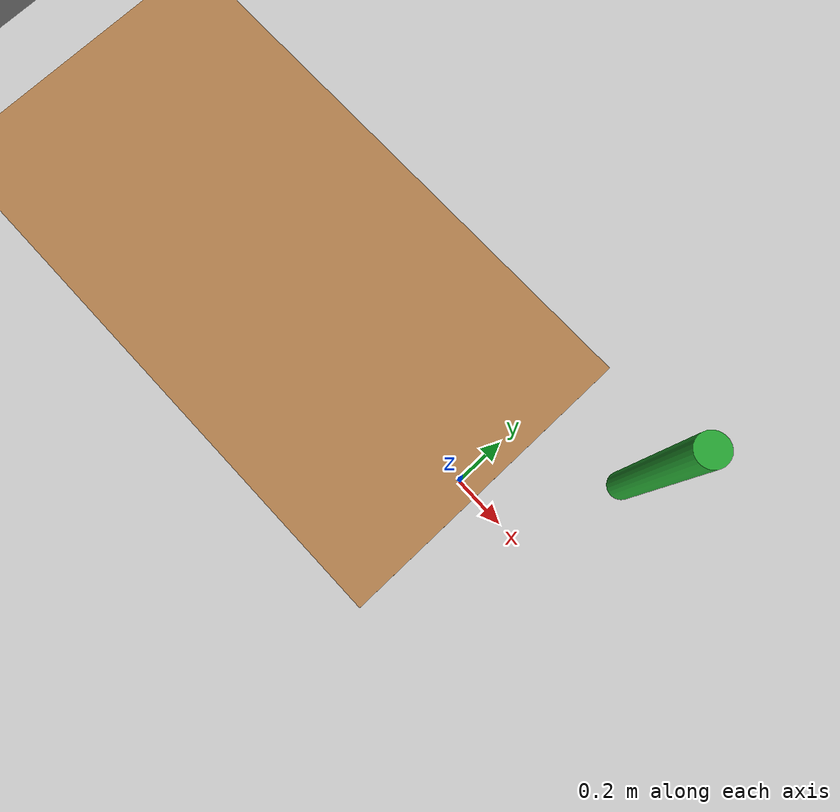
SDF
<sdf version="1.7">
 <world name="default">
  <light name="sun" type="directional">
   <pose>0 0 10 0 -0 0</pose>
   <diffuse>0.8 0.8 0.8 1</diffuse>
   <specular>0.2 0.2 0.2 1</specular>
   <attenuation>
    <range>1000</range>
    <constant>0.9</constant>
    <linear>0.01</linear>
    <quadratic>0.001</quadratic>
   </attenuation>
   <direction>-0.5 0.1 -0.9</direction>
   <spot><inner_angle>0</inner_angle><outer_angle>0</outer_angle><falloff>0</falloff></spot>
  </light>
  <model name="ground_plane">
   <static>1</static>
   <link name="link">
    <collision name="collision">
     <geometry><plane><normal>0 0 1</normal><size>100 100</size></plane></geometry>
     <surface>
      <contact><collide_bitmask>65535</collide_bitmask></contact>
      <friction><ode><mu>100</mu><mu2>50</mu2></ode></friction>
     </surface>
    </collision>
    <visual name="visual">
     <cast_shadows>0</cast_shadows>
     <geometry><plane><normal>0 0 1</normal><size>100 100</size></plane></geometry>
     <material>
      <script><uri>file://media/materials/scripts/gazebo.material</uri><name>Gazebo/Grey</name></script>
     </material>
    </visual>
   </link>
  </model>
  <gravity>0 0 -9.8</gravity>
  <magnetic_field>6e-06 2.3e-05 -4.2e-05</magnetic_field>
  <atmosphere type="adiabatic"/>
  <physics name="default_physics" default="0" type="ode">
   <max_step_size>0.001</max_step_size>
   <real_time_factor>1</real_time_factor>
   <real_time_update_rate>1000</real_time_update_rate>
  </physics>
  <scene><ambient>0.7 0.7 0.7 1</ambient><background>0.7 0.7 0.7 1</background><shadows>1</shadows></scene>
  <audio><device>default</device></audio>
  <spherical_coordinates>
   <surface_model>EARTH_WGS84</surface_model>
   <latitude_deg>0</latitude_deg>
   <longitude_deg>0</longitude_deg>
   <elevation>0</elevation>
   <heading_deg>0</heading_deg>
  </spherical_coordinates>
  <model name="unit_cylinder">
   <link name="link">
    <inertial>
     <mass>1</mass>
     <inertia><ixx>0.145833</ixx><ixy>0</ixy><ixz>0</ixz><iyy>0.145833</iyy><iyz>0</iyz><izz>0.125</izz></inertia>
    </inertial>
    <visual name="visual">
     <geometry><cylinder><radius>0.05</radius><length>0.1</length></cylinder></geometry>
     <material>
      <script><name>Gazebo/Green</name><uri>file://media/materials/scripts/gazebo.material</uri></script>
      <shader type="pixel"><normal_map>__default__</normal_map></shader>
      <ambient>0.3 0.3 0.3 1</ambient>
      <diffuse>0.7 0.7 0.7 1</diffuse>
      <specular>0.01 0.01 0.01 1</specular>
      <emissive>0 0 0 1</emissive>
     </material>
    </visual>
    <collision name="collision">
     <geometry><cylinder><radius>0.5</radius><length>1</length></cylinder></geometry>
     <surface>
      <friction>
       <ode><mu>1</mu><mu2>1</mu2><fdir1>0 0 0</fdir1><slip1>0</slip1><slip2>0</slip2></ode>
       <torsional>
        <coefficient>1</coefficient>
        <patch_radius>0</patch_radius>
        <surface_radius>0</surface_radius>
        <use_patch_radius>1</use_patch_radius>
        <ode><slip>0</slip></ode>
       </torsional>
      </friction>
      <bounce><restitution_coefficient>0</restitution_coefficient><threshold>1e+06</threshold></bounce>
      <contact>
       <collide_without_contact>0</collide_without_contact>
       <collide_without_contact_bitmask>1</collide_without_contact_bitmask>
       <collide_bitmask>1</collide_bitmask>
       <ode>
        <soft_cfm>0</soft_cfm>
        <soft_erp>0.2</soft_erp>
        <kp>1e+13</kp>
        <kd>1</kd>
        <max_vel>0.01</max_vel>
        <min_depth>0</min_depth>
       </ode>
       <bullet>
        <split_impulse>1</split_impulse>
        <split_impulse_penetration_threshold>-0.01</split_impulse_penetration_threshold>
        <soft_cfm>0</soft_cfm>
        <soft_erp>0.2</soft_erp>
        <kp>1e+13</kp>
        <kd>1</kd>
       </bullet>
      </contact>
     </surface>
    </collision>
   </link>
   <static>1</static>
   <pose>-83.7335 -327.346 0.5 -1.5708 0.873 1.31937</pose>
  </model>
  <plugin name="ros_link_attacher_plugin" filename="libgazebo_ros_link_attacher.so"/>
  <model name="cylinder_green">
   <link name="link">
    <inertial>
     <mass>1</mass>
     <inertia><ixx>0.145833</ixx><ixy>0</ixy><ixz>0</ixz><iyy>0.145833</iyy><iyz>0</iyz><izz>0.125</izz></inertia>
    </inertial>
    <pose>0.118376 0 0.163598 0 -0 0</pose>
    <visual name="visual">
     <geometry><cylinder><radius>0.05</radius><length>0.9</length></cylinder></geometry>
     <material>
      <script><name>Gazebo/Green</name><uri>file://media/materials/scripts/gazebo.material</uri></script>
      <shader type="pixel"><normal_map>__default__</normal_map></shader>
      <ambient>0 1 0 1</ambient>
      <diffuse>0.7 0.7 0.7 1</diffuse>
      <specular>0.01 0.01 0.01 1</specular>
      <emissive>0 0 0 1</emissive>
     </material>
    </visual>
    <collision name="collision">
     <geometry><cylinder><radius>0.05</radius><length>0.9</length></cylinder></geometry>
     <surface>
      <friction>
       <ode><mu>1</mu><mu2>1</mu2><fdir1>0 0 0</fdir1><slip1>0</slip1><slip2>0</slip2></ode>
       <torsional>
        <coefficient>1</coefficient>
        <patch_radius>0</patch_radius>
        <surface_radius>0</surface_radius>
        <use_patch_radius>1</use_patch_radius>
        <ode><slip>0</slip></ode>
       </torsional>
      </friction>
      <bounce><restitution_coefficient>0</restitution_coefficient><threshold>1e+06</threshold></bounce>
      <contact>
       <collide_without_contact>0</collide_without_contact>
       <collide_without_contact_bitmask>1</collide_without_contact_bitmask>
       <collide_bitmask>1</collide_bitmask>
       <ode>
        <soft_cfm>0</soft_cfm>
        <soft_erp>0.2</soft_erp>
        <kp>1e+13</kp>
        <kd>1</kd>
        <max_vel>0.01</max_vel>
        <min_depth>0</min_depth>
       </ode>
       <bullet>
        <split_impulse>1</split_impulse>
        <split_impulse_penetration_threshold>-0.01</split_impulse_penetration_threshold>
        <soft_cfm>0</soft_cfm>
        <soft_erp>0.2</soft_erp>
        <kp>1e+13</kp>
        <kd>1</kd>
       </bullet>
      </contact>
     </surface>
    </collision>
   </link>
   <static>1</static>
   <pose>0.277388 0.400017 0.286402 -0 1e-06 -0.000134</pose>
  </model>
  <model name="table">
   <static>1</static>
   <link name="link">
    <collision name="surface">
     <pose>0 0 1 0 -0 0</pose>
     <geometry><box><size>1.5 0.8 0.03</size></box></geometry>
     <surface><friction><ode><mu>0.6</mu><mu2>0.6</mu2></ode></friction></surface>
    </collision>
    <visual name="visual1">
     <pose>0 0 1 0 -0 0</pose>
     <geometry><box><size>1.5 0.8 0.03</size></box></geometry>
     <material>
      <script><uri>file://media/materials/scripts/gazebo.material</uri><name>Gazebo/Wood</name></script>
     </material>
    </visual>
    <collision name="front_left_leg">
     <pose>0.68 0.38 0.5 0 -0 0</pose>
     <geometry><cylinder><radius>0.02</radius><length>1</length></cylinder></geometry>
    </collision>
    <visual name="front_left_leg">
     <pose>0.68 0.38 0.5 0 -0 0</pose>
     <geometry><cylinder><radius>0.02</radius><length>1</length></cylinder></geometry>
     <material>
      <script><uri>file://media/materials/scripts/gazebo.material</uri><name>Gazebo/Grey</name></script>
     </material>
    </visual>
    <collision name="front_right_leg">
     <pose>0.68 -0.38 0.5 0 -0 0</pose>
     <geometry><cylinder><radius>0.02</radius><length>1</length></cylinder></geometry>
    </collision>
    <visual name="front_right_leg">
     <pose>0.68 -0.38 0.5 0 -0 0</pose>
     <geometry><cylinder><radius>0.02</radius><length>1</length></cylinder></geometry>
     <material>
      <script><uri>file://media/materials/scripts/gazebo.material</uri><name>Gazebo/Grey</name></script>
     </material>
    </visual>
    <collision name="back_right_leg">
     <pose>-0.68 -0.38 0.5 0 -0 0</pose>
     <geometry><cylinder><radius>0.02</radius><length>1</length></cylinder></geometry>
    </collision>
    <visual name="back_right_leg">
     <pose>-0.68 -0.38 0.5 0 -0 0</pose>
     <geometry><cylinder><radius>0.02</radius><length>1</length></cylinder></geometry>
     <material>
      <script><uri>file://media/materials/scripts/gazebo.material</uri><name>Gazebo/Grey</name></script>
     </material>
    </visual>
    <collision name="back_left_leg">
     <pose>-0.68 0.38 0.5 0 -0 0</pose>
     <geometry><cylinder><radius>0.02</radius><length>1</length></cylinder></geometry>
    </collision>
    <visual name="back_left_leg">
     <pose>-0.68 0.38 0.5 0 -0 0</pose>
     <geometry><cylinder><radius>0.02</radius><length>1</length></cylinder></geometry>
     <material>
      <script><uri>file://media/materials/scripts/gazebo.material</uri><name>Gazebo/Grey</name></script>
     </material>
    </visual>
   </link>
   <pose>-0.66925 -0.075913 0 0 -0 0</pose>
  </model>
  <model name="protection_wall">
   <link name="link">
    <inertial>
     <mass>100</mass>
     <inertia>
      <ixx>0.166667</ixx>
      <ixy>0</ixy>
      <ixz>0</ixz>
      <iyy>0.166667</iyy>
      <iyz>0</iyz>
      <izz>0.166667</izz>
     </inertia>
    </inertial>
    <pose>-2.5 0.0 0.5 0 -0 0</pose>
    <visual name="visual">
     <geometry><box><size>0.02 1 1</size></box></geometry>
     <material>
      <script><name>Gazebo/Grey</name><uri>file://media/materials/scripts/gazebo.material</uri></script>
      <shader type="pixel"><normal_map>__default__</normal_map></shader>
      <ambient>0.3 0.3 0.3 1</ambient>
      <diffuse>0.7 0.7 0.7 1</diffuse>
      <specular>0.01 0.01 0.01 1</specular>
      <emissive>0 0 0 1</emissive>
     </material>
    </visual>
    <collision name="collision">
     <geometry><box><size>0.02 1 1</size></box></geometry>
     <surface>
      <friction>
       <ode><mu>1</mu><mu2>1</mu2><fdir1>0 0 0</fdir1><slip1>0</slip1><slip2>0</slip2></ode>
       <torsional>
        <coefficient>1</coefficient>
        <patch_radius>0</patch_radius>
        <surface_radius>0</surface_radius>
        <use_patch_radius>1</use_patch_radius>
        <ode><slip>0</slip></ode>
       </torsional>
      </friction>
      <bounce><restitution_coefficient>0</restitution_coefficient><threshold>1e+06</threshold></bounce>
      <contact>
       <collide_without_contact>0</collide_without_contact>
       <collide_without_contact_bitmask>1</collide_without_contact_bitmask>
       <collide_bitmask>1</collide_bitmask>
       <ode>
        <soft_cfm>0</soft_cfm>
        <soft_erp>0.2</soft_erp>
        <kp>1e+13</kp>
        <kd>1</kd>
        <max_vel>0.01</max_vel>
        <min_depth>0</min_depth>
       </ode>
       <bullet>
        <split_impulse>1</split_impulse>
        <split_impulse_penetration_threshold>-0.01</split_impulse_penetration_threshold>
        <soft_cfm>0</soft_cfm>
        <soft_erp>0.2</soft_erp>
        <kp>1e+13</kp>
        <kd>1</kd>
       </bullet>
      </contact>
     </surface>
    </collision>
   </link>
   <static>1</static>
  </model>
 </world>
</sdf>
